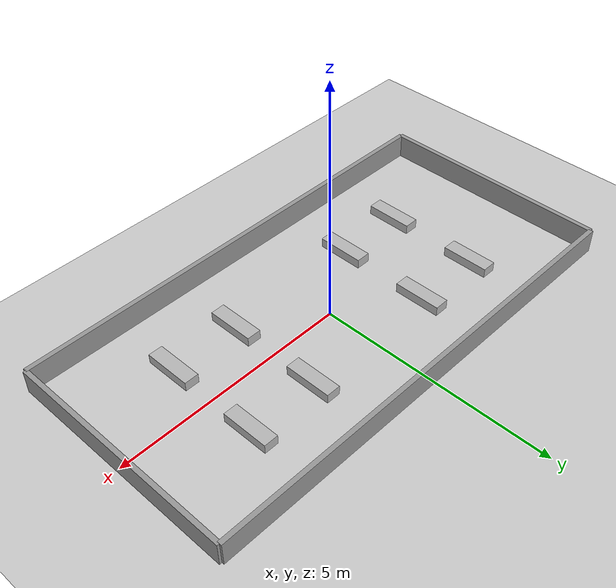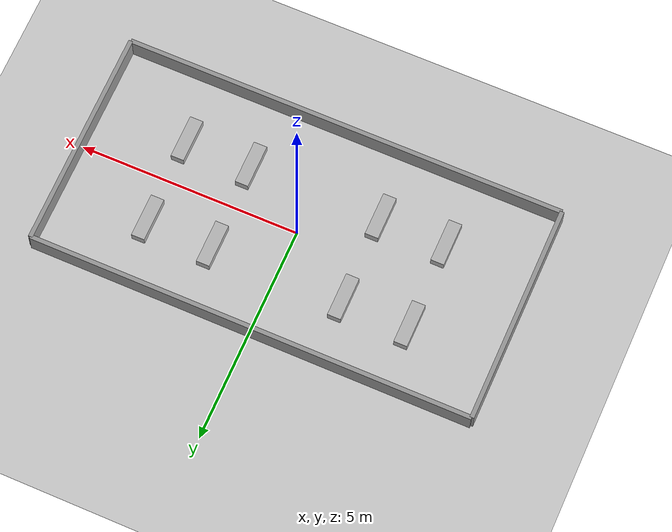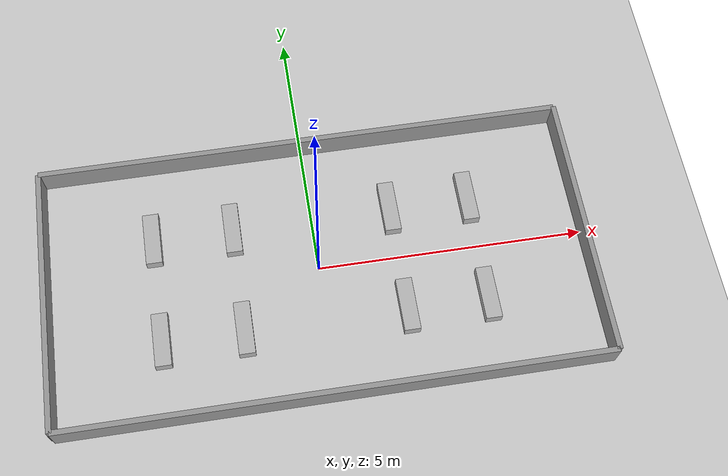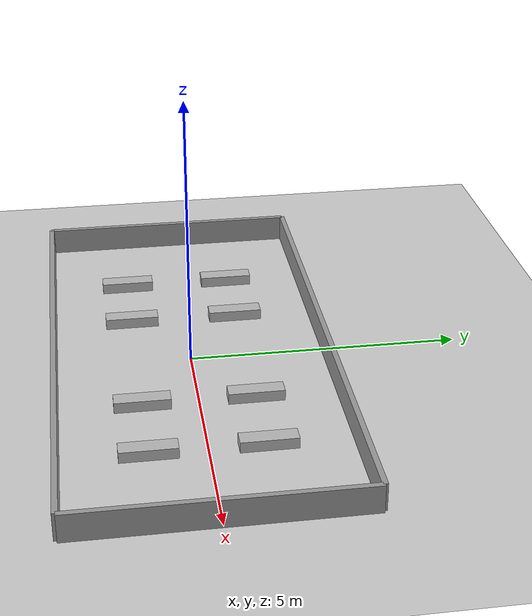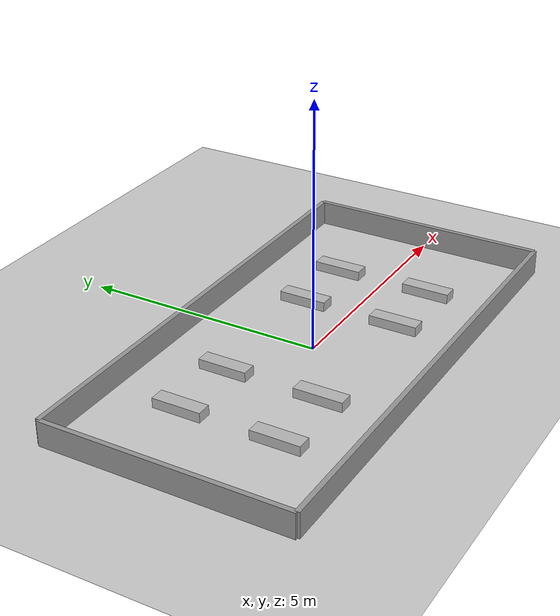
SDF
<?xml version="1.0" ?>
<sdf version="1.5">
  <world name="default">
    <include>
      <uri>model://ground_plane</uri>
    </include>
    <include>
      <uri>model://sun</uri>
    </include>

    <include>
      <name>crate_1</name>
      <uri>model://wooden_crate</uri>
      <pose>1.5 1.0 0.1 0 0 1.57</pose>
    </include>
    <include>
      <name>crate_2</name>
      <uri>model://wooden_crate</uri>
      <pose>1.5 -1.0 0.1 0 0 1.57</pose>
    </include>

    <include>
      <name>crate_3</name>
      <uri>model://wooden_crate</uri>
      <pose>-1.5 1.0 0.1 0 0 1.57</pose>
    </include>
    <include>
      <name>crate_4</name>
      <uri>model://wooden_crate</uri>
      <pose>-1.5 -1.0 0.1 0 0 1.57</pose>
    </include>

    <include>
      <name>crate_5</name>
      <uri>model://wooden_crate</uri>
      <pose>-3.0 1.0 0.1 0 0 1.57</pose>
    </include>
    <include>
      <name>crate_6</name>
      <uri>model://wooden_crate</uri>
      <pose>-3.0 -1.0 0.1 0 0 1.57</pose>
    </include>

    <include>
      <name>crate_7</name>
      <uri>model://wooden_crate</uri>
      <pose>3.0 1.0 0.1 0 0 1.57</pose>
    </include>
    <include>
      <name>crate_8</name>
      <uri>model://wooden_crate</uri>
      <pose>3.0 -1.0 0.1 0 0 1.57</pose>
    </include>

    <include>
      <uri>model://greenhouse_walls</uri>
      <pose>0.0 0.0 0.0 0 0 1.57</pose>
    </include>
  </world>
</sdf>

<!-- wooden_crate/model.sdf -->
<sdf version="1.4">
  <model name="wooden_crate">
    <pose>0.5 0.5 0.5 0 0 0</pose>
    <static>true</static>
    <link name="link">
      <collision name="collision">
        <geometry>
          <box>
            <size>1.0 0.3 0.2</size>
          </box>
        </geometry>
      </collision>
      <visual name="visual">
        <geometry>
          <box>
            <size>1.0 0.3 0.2</size>
          </box>
        </geometry>
      </visual>
    </link>
  </model>
</sdf>

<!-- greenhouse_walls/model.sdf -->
<sdf version='1.7'>
  <model name='greenhouse_walls'>
    <link name='link_0'>
      <inertial>
        <mass>1</mass>
        <inertia>
          <ixx>0.166667</ixx>
          <ixy>0</ixy>
          <ixz>0</ixz>
          <iyy>0.166667</iyy>
          <iyz>0</iyz>
          <izz>0.166667</izz>
        </inertia>
        <pose>0 0 0 0 -0 0</pose>
      </inertial>
      <pose>0 -5 0 0 -0 0</pose>
      <gravity>0</gravity>
      <self_collide>0</self_collide>
      <kinematic>1</kinematic>
      <enable_wind>0</enable_wind>
      <visual name='visual'>
        <pose>0 0 0 0 -0 0</pose>
        <geometry>
          <box>
            <size>5 0.1 1</size>
          </box>
        </geometry>
        <material>
          <lighting>1</lighting>
          <script>
            <uri>file://media/materials/scripts/gazebo.material</uri>
            <name>Gazebo/Grey</name>
          </script>
          <shader type='pixel'>
            <normal_map>__default__</normal_map>
          </shader>
          <ambient>0.3 0.3 0.3 1</ambient>
          <diffuse>0.7 0.7 0.7 1</diffuse>
          <specular>0.01 0.01 0.01 1</specular>
          <emissive>0 0 0 1</emissive>
        </material>
        <transparency>0</transparency>
        <cast_shadows>1</cast_shadows>
      </visual>
      <collision name='collision'>
        <laser_retro>0</laser_retro>
        <max_contacts>10</max_contacts>
        <pose>0 0 0 0 -0 0</pose>
        <geometry>
          <box>
            <size>5 0.1 1</size>
          </box>
        </geometry>
      </collision>
    </link>
    <link name='link_0_clone'>
      <inertial>
        <mass>1</mass>
        <inertia>
          <ixx>0.166667</ixx>
          <ixy>0</ixy>
          <ixz>0</ixz>
          <iyy>0.166667</iyy>
          <iyz>0</iyz>
          <izz>0.166667</izz>
        </inertia>
        <pose>0 0 0 0 -0 0</pose>
      </inertial>
      <pose>0 5 0 0 -0 0</pose>
      <gravity>1</gravity>
      <self_collide>0</self_collide>
      <kinematic>1</kinematic>
      <enable_wind>0</enable_wind>
      <visual name='visual'>
        <pose>0 0 0 0 -0 0</pose>
        <geometry>
          <box>
            <size>5 0.1 1</size>
          </box>
        </geometry>
        <material>
          <lighting>1</lighting>
          <script>
            <uri>file://media/materials/scripts/gazebo.material</uri>
            <name>Gazebo/Grey</name>
          </script>
          <shader type='pixel'>
            <normal_map>__default__</normal_map>
          </shader>
          <ambient>0.3 0.3 0.3 1</ambient>
          <diffuse>0.7 0.7 0.7 1</diffuse>
          <specular>0.01 0.01 0.01 1</specular>
          <emissive>0 0 0 1</emissive>
        </material>
        <transparency>0</transparency>
        <cast_shadows>1</cast_shadows>
      </visual>
      <collision name='collision'>
        <laser_retro>0</laser_retro>
        <max_contacts>10</max_contacts>
        <pose>0 0 0 0 -0 0</pose>
        <geometry>
          <box>
            <size>5 0.1 1</size>
          </box>
        </geometry>
      </collision>
    </link>

    <link name='link_1'>
      <inertial>
        <mass>1</mass>
        <inertia>
          <ixx>0.166667</ixx>
          <ixy>0</ixy>
          <ixz>0</ixz>
          <iyy>0.166667</iyy>
          <iyz>0</iyz>
          <izz>0.166667</izz>
        </inertia>
        <pose>0 0 0 0 -0 0</pose>
      </inertial>
      <pose>2.5 0 0 0 -0 1.57</pose>
      <gravity>1</gravity>
      <self_collide>0</self_collide>
      <kinematic>1</kinematic>
      <enable_wind>0</enable_wind>
      <visual name='visual'>
        <pose>0 0 0 0 -0 0</pose>
        <geometry>
          <box>
            <size>10 0.1 1</size>
          </box>
        </geometry>
        <material>
          <lighting>1</lighting>
          <script>
            <uri>file://media/materials/scripts/gazebo.material</uri>
            <name>Gazebo/Grey</name>
          </script>
          <shader type='pixel'>
            <normal_map>__default__</normal_map>
          </shader>
          <ambient>0.3 0.3 0.3 1</ambient>
          <diffuse>0.7 0.7 0.7 1</diffuse>
          <specular>0.01 0.01 0.01 1</specular>
          <emissive>0 0 0 1</emissive>
        </material>
        <transparency>0</transparency>
        <cast_shadows>1</cast_shadows>
      </visual>
      <collision name='collision'>
        <laser_retro>0</laser_retro>
        <max_contacts>10</max_contacts>
        <pose>0 0 0 0 -0 0</pose>
        <geometry>
          <box>
            <size>10 0.1 1</size>
          </box>
        </geometry>
      </collision>
    </link>

    <link name='link_1_clone'>
      <inertial>
        <mass>1</mass>
        <inertia>
          <ixx>0.166667</ixx>
          <ixy>0</ixy>
          <ixz>0</ixz>
          <iyy>0.166667</iyy>
          <iyz>0</iyz>
          <izz>0.166667</izz>
        </inertia>
        <pose>0 0 0 0 -0 0</pose>
      </inertial>
      <pose>-2.5 0 0 0 -0 1.57</pose>
      <gravity>1</gravity>
      <self_collide>0</self_collide>
      <kinematic>1</kinematic>
      <enable_wind>0</enable_wind>
      <visual name='visual'>
        <pose>0 0 0 0 -0 0</pose>
        <geometry>
          <box>
            <size>10 0.1 1</size>
          </box>
        </geometry>
        <material>
          <lighting>1</lighting>
          <script>
            <uri>file://media/materials/scripts/gazebo.material</uri>
            <name>Gazebo/Grey</name>
          </script>
          <shader type='pixel'>
            <normal_map>__default__</normal_map>
          </shader>
          <ambient>0.3 0.3 0.3 1</ambient>
          <diffuse>0.7 0.7 0.7 1</diffuse>
          <specular>0.01 0.01 0.01 1</specular>
          <emissive>0 0 0 1</emissive>
        </material>
        <transparency>0</transparency>
        <cast_shadows>1</cast_shadows>
      </visual>
      <collision name='collision'>
        <laser_retro>0</laser_retro>
        <max_contacts>10</max_contacts>
        <pose>0 0 0 0 -0 0</pose>
        <geometry>
          <box>
            <size>10 0.1 1</size>
          </box>
        </geometry>
      </collision>
    </link>
    <static>True</static>
    <allow_auto_disable>1</allow_auto_disable>
  </model>
</sdf>
